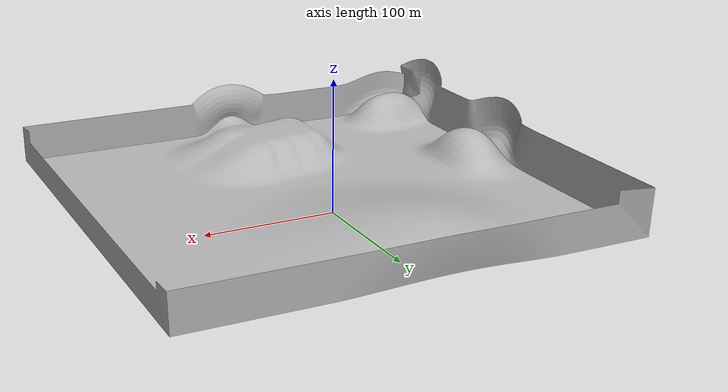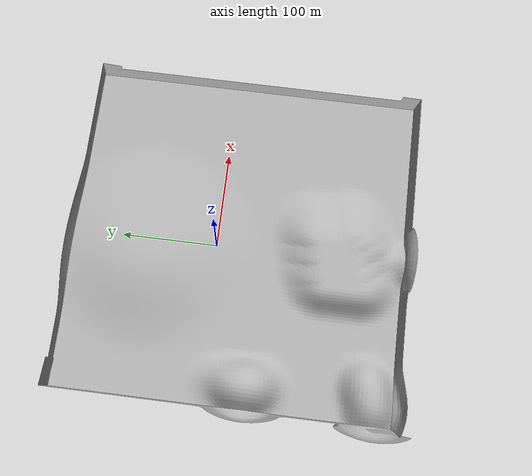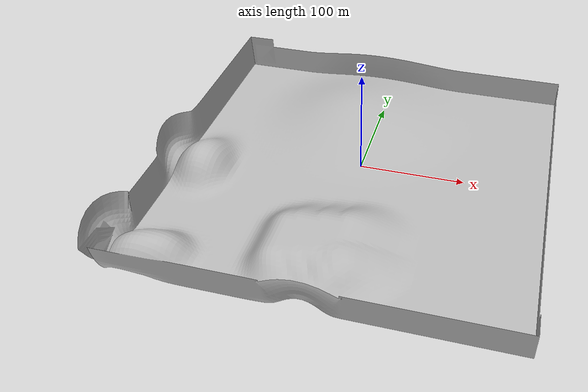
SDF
<sdf version='1.6'>
  <world name='default'>
    <include>
      <uri>model://sun</uri>
    </include>

    <include>
      <name>terrain_1</name>
      <uri>model://terrain_2</uri>
      <pose>0 0 0 0 0 0</pose>
    </include>

    <gui fullscreen='0'>
      <camera name='user_camera'>
        <pose frame=''>9.0 -12.0 6.0 0.0 0.3 2.2</pose>
        <view_controller>orbit</view_controller>
        <projection_type>perspective</projection_type>
      </camera>
    </gui>

  </world>
</sdf>

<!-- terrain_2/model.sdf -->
<sdf version="1.5">
  <model name="terrain_1">
    <pose>0 0 0 0 0 0</pose>
    <static>true</static>
    <link name="body">
      <visual name="visual">
        <geometry>
          <mesh><uri>model://terrain_2/media/terrain_2.dae</uri></mesh>
        </geometry>
	<material>
          <script>
            <uri>model://terrain_2/media/scripts</uri>
            <uri>model://terrain_2/media/Textures</uri>
            <name>RepeatedGrass/Diffuse</name>
          </script>
        </material>
      </visual>
      <collision name="collision">
        <geometry>
          <mesh><uri>model://terrain_2/media/terrain_2.dae</uri></mesh>
        </geometry>
      </collision>
    </link>
  </model>
</sdf>
